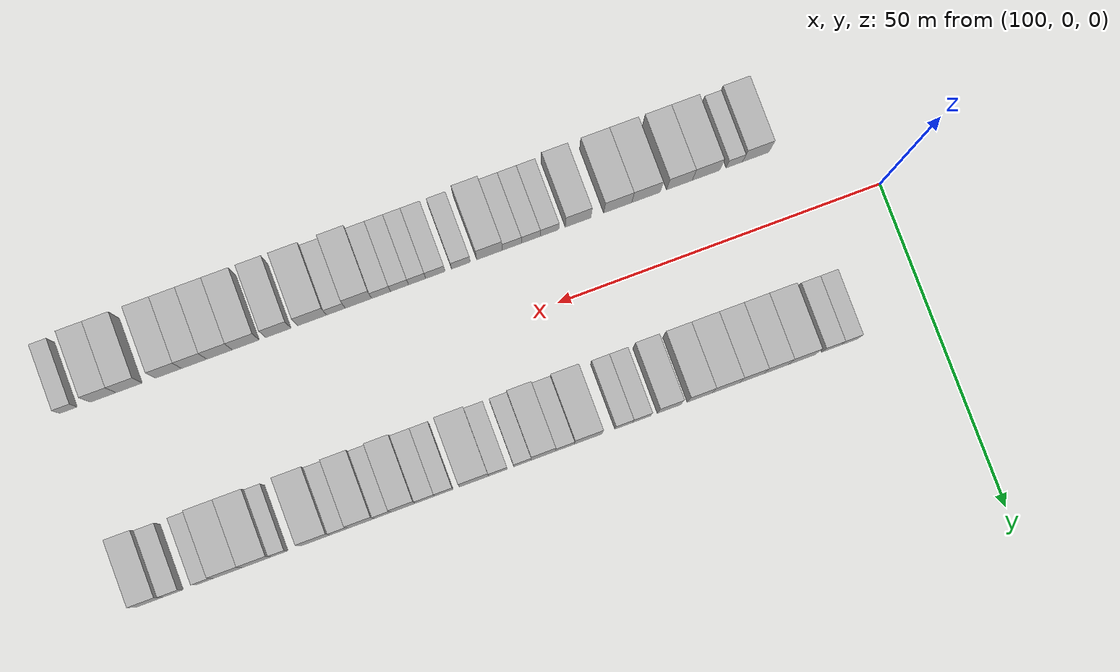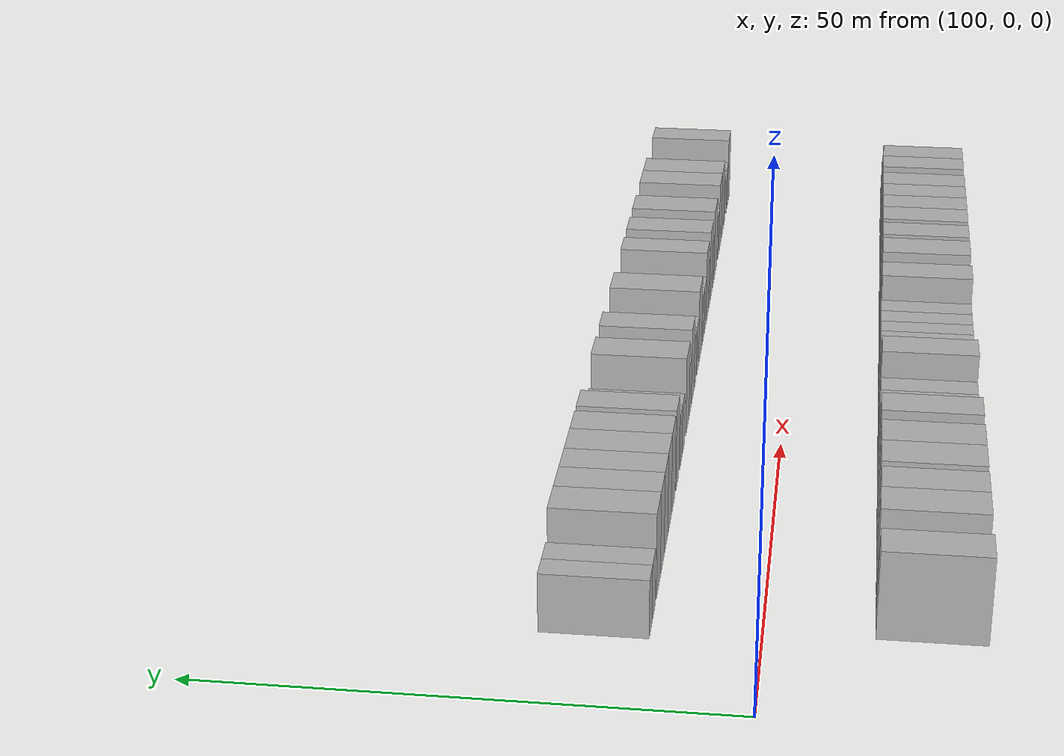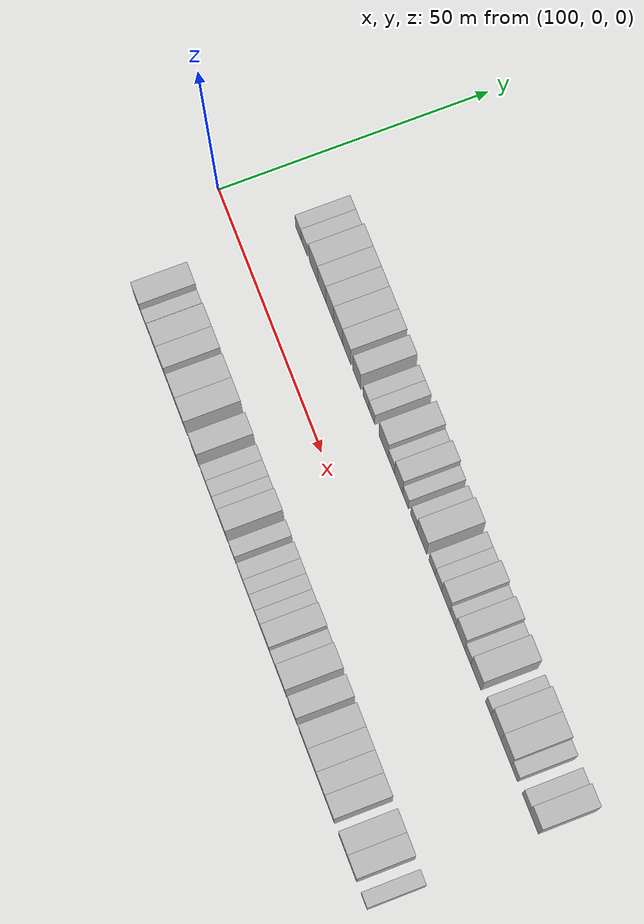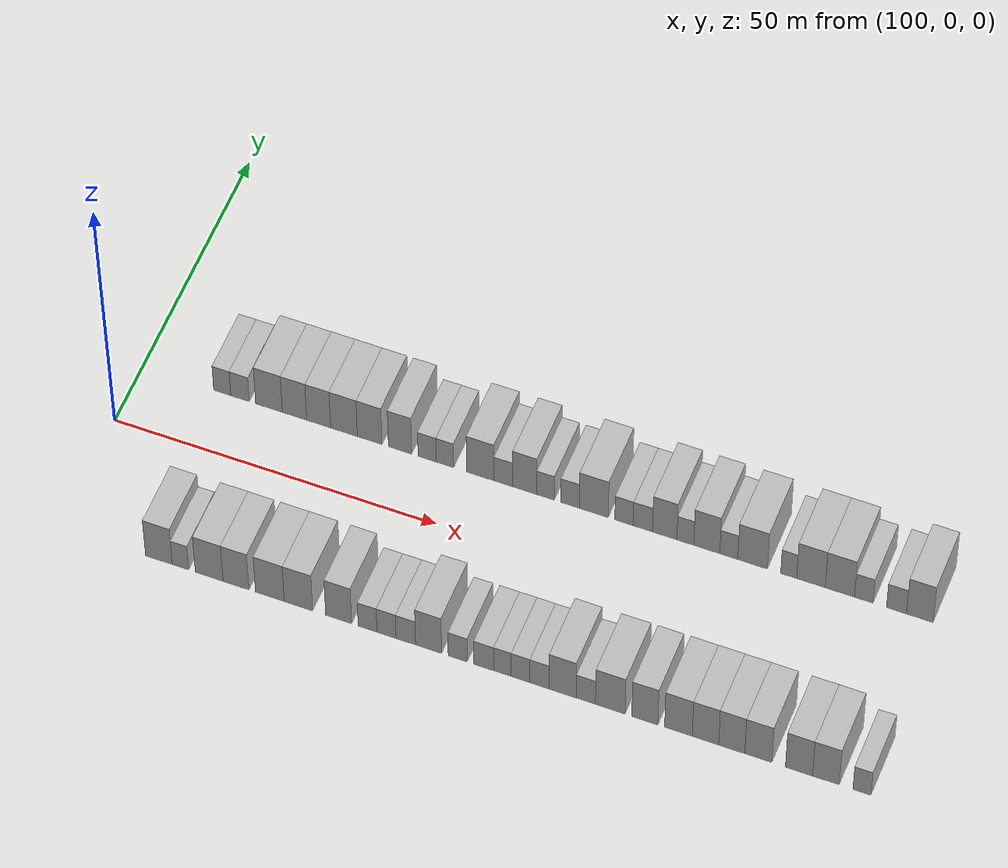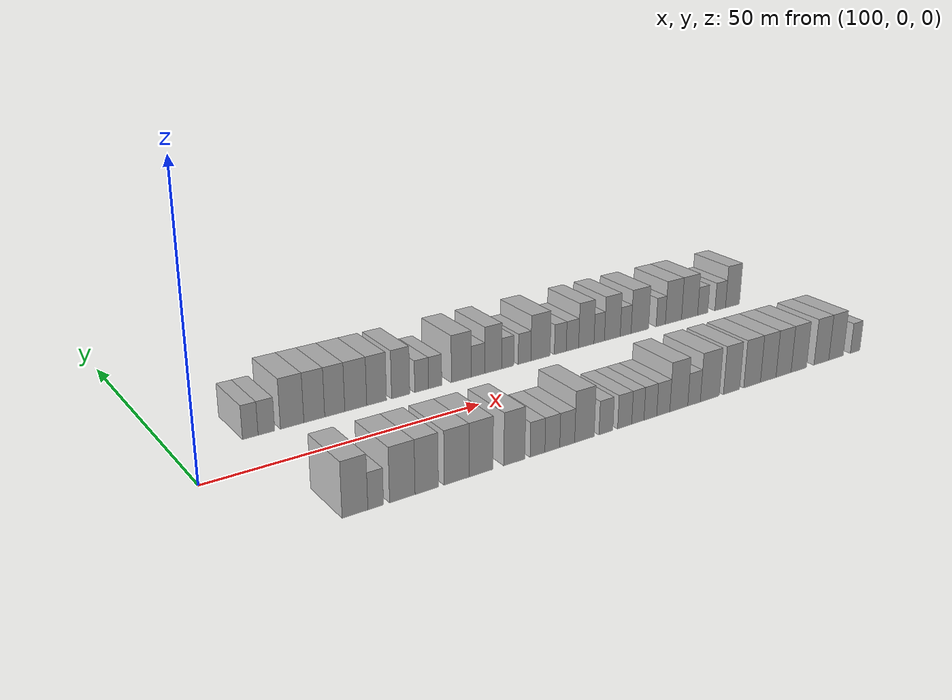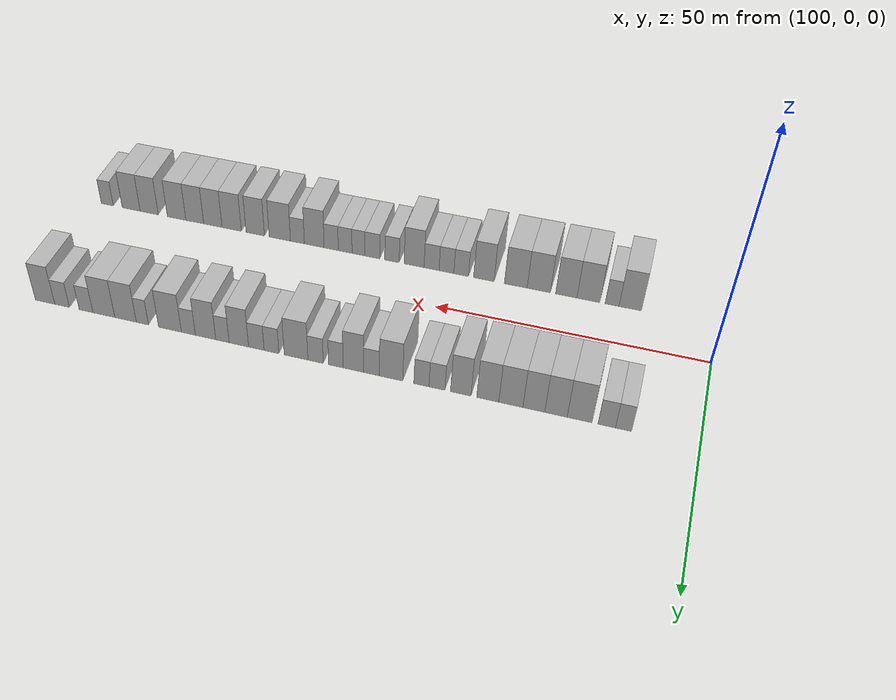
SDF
<sdf version="1.6">
 <world name="default">
  <model name="building_28">
   <static>1</static>
   <pose>112.5462 15.0000 0 0.000000 0.000000 1.570796</pose>
   <link name="link">
    <pose>0 0 3.00 0 0 0</pose>
    <collision name="collision"><geometry><box><size>10.0000 2.6904 6.0000</size></box></geometry></collision>
    <visual name="visual">
     <cast_shadows>0</cast_shadows>
     <geometry><box><size>10.0000 2.6904 6.0000</size></box></geometry>
     <material>
      <script>
       <uri>model://HANNAS_wall/materials/scripts</uri>
       <uri>model://HANNAS_wall/materials/textures</uri>
       <name>vrc/HANNAS_wall</name>
      </script>
     </material>
    </visual>
   </link>
  </model>
  <model name="building_29">
   <static>1</static>
   <pose>115.3470 15.0000 0 0.000000 0.000000 1.570796</pose>
   <link name="link">
    <pose>0 0 3.00 0 0 0</pose>
    <collision name="collision"><geometry><box><size>10.0000 2.9112 6.0000</size></box></geometry></collision>
    <visual name="visual">
     <cast_shadows>0</cast_shadows>
     <geometry><box><size>10.0000 2.9112 6.0000</size></box></geometry>
     <material>
      <script>
       <uri>model://HANNAS_wall/materials/scripts</uri>
       <uri>model://HANNAS_wall/materials/textures</uri>
       <name>vrc/HANNAS_wall</name>
      </script>
     </material>
    </visual>
   </link>
  </model>
  <model name="building_30">
   <static>1</static>
   <pose>119.9015 15.0000 0 0.000000 0.000000 1.570796</pose>
   <link name="link">
    <pose>0 0 4.50 0 0 0</pose>
    <collision name="collision"><geometry><box><size>10.0000 4.1978 9.0000</size></box></geometry></collision>
    <visual name="visual">
     <cast_shadows>0</cast_shadows>
     <geometry><box><size>10.0000 4.1978 9.0000</size></box></geometry>
     <material>
      <script>
       <uri>model://HANNAS_wall/materials/scripts</uri>
       <uri>model://HANNAS_wall/materials/textures</uri>
       <name>vrc/HANNAS_wall</name>
      </script>
     </material>
    </visual>
   </link>
  </model>
  <model name="building_31">
   <static>1</static>
   <pose>123.9093 15.0000 0 0.000000 0.000000 1.570796</pose>
   <link name="link">
    <pose>0 0 4.50 0 0 0</pose>
    <collision name="collision"><geometry><box><size>10.0000 3.8177 9.0000</size></box></geometry></collision>
    <visual name="visual">
     <cast_shadows>0</cast_shadows>
     <geometry><box><size>10.0000 3.8177 9.0000</size></box></geometry>
     <material>
      <script>
       <uri>model://HANNAS_wall/materials/scripts</uri>
       <uri>model://HANNAS_wall/materials/textures</uri>
       <name>vrc/HANNAS_wall</name>
      </script>
     </material>
    </visual>
   </link>
  </model>
  <model name="building_32">
   <static>1</static>
   <pose>127.6894 15.0000 0 0.000000 0.000000 1.570796</pose>
   <link name="link">
    <pose>0 0 4.50 0 0 0</pose>
    <collision name="collision"><geometry><box><size>10.0000 3.7425 9.0000</size></box></geometry></collision>
    <visual name="visual">
     <cast_shadows>0</cast_shadows>
     <geometry><box><size>10.0000 3.7425 9.0000</size></box></geometry>
     <material>
      <script>
       <uri>model://HANNAS_wall/materials/scripts</uri>
       <uri>model://HANNAS_wall/materials/textures</uri>
       <name>vrc/HANNAS_wall</name>
      </script>
     </material>
    </visual>
   </link>
  </model>
  <model name="building_33">
   <static>1</static>
   <pose>131.6490 15.0000 0 0.000000 0.000000 1.570796</pose>
   <link name="link">
    <pose>0 0 4.50 0 0 0</pose>
    <collision name="collision"><geometry><box><size>10.0000 4.1766 9.0000</size></box></geometry></collision>
    <visual name="visual">
     <cast_shadows>0</cast_shadows>
     <geometry><box><size>10.0000 4.1766 9.0000</size></box></geometry>
     <material>
      <script>
       <uri>model://HANNAS_wall/materials/scripts</uri>
       <uri>model://HANNAS_wall/materials/textures</uri>
       <name>vrc/HANNAS_wall</name>
      </script>
     </material>
    </visual>
   </link>
  </model>
  <model name="building_34">
   <static>1</static>
   <pose>135.6532 15.0000 0 0.000000 0.000000 1.570796</pose>
   <link name="link">
    <pose>0 0 4.50 0 0 0</pose>
    <collision name="collision"><geometry><box><size>10.0000 3.8319 9.0000</size></box></geometry></collision>
    <visual name="visual">
     <cast_shadows>0</cast_shadows>
     <geometry><box><size>10.0000 3.8319 9.0000</size></box></geometry>
     <material>
      <script>
       <uri>model://HANNAS_wall/materials/scripts</uri>
       <uri>model://HANNAS_wall/materials/textures</uri>
       <name>vrc/HANNAS_wall</name>
      </script>
     </material>
    </visual>
   </link>
  </model>
  <model name="building_35">
   <static>1</static>
   <pose>140.3760 15.0000 0 0.000000 0.000000 1.570796</pose>
   <link name="link">
    <pose>0 0 4.50 0 0 0</pose>
    <collision name="collision"><geometry><box><size>10.0000 3.6137 9.0000</size></box></geometry></collision>
    <visual name="visual">
     <cast_shadows>0</cast_shadows>
     <geometry><box><size>10.0000 3.6137 9.0000</size></box></geometry>
     <material>
      <script>
       <uri>model://HANNAS_wall/materials/scripts</uri>
       <uri>model://HANNAS_wall/materials/textures</uri>
       <name>vrc/HANNAS_wall</name>
      </script>
     </material>
    </visual>
   </link>
  </model>
  <model name="building_36">
   <static>1</static>
   <pose>144.5920 15.0000 0 0.000000 0.000000 1.570796</pose>
   <link name="link">
    <pose>0 0 3.00 0 0 0</pose>
    <collision name="collision"><geometry><box><size>10.0000 2.8183 6.0000</size></box></geometry></collision>
    <visual name="visual">
     <cast_shadows>0</cast_shadows>
     <geometry><box><size>10.0000 2.8183 6.0000</size></box></geometry>
     <material>
      <script>
       <uri>model://HANNAS_wall/materials/scripts</uri>
       <uri>model://HANNAS_wall/materials/textures</uri>
       <name>vrc/HANNAS_wall</name>
      </script>
     </material>
    </visual>
   </link>
  </model>
  <model name="building_37">
   <static>1</static>
   <pose>147.3561 15.0000 0 0.000000 0.000000 1.570796</pose>
   <link name="link">
    <pose>0 0 3.00 0 0 0</pose>
    <collision name="collision"><geometry><box><size>10.0000 2.7098 6.0000</size></box></geometry></collision>
    <visual name="visual">
     <cast_shadows>0</cast_shadows>
     <geometry><box><size>10.0000 2.7098 6.0000</size></box></geometry>
     <material>
      <script>
       <uri>model://HANNAS_wall/materials/scripts</uri>
       <uri>model://HANNAS_wall/materials/textures</uri>
       <name>vrc/HANNAS_wall</name>
      </script>
     </material>
    </visual>
   </link>
  </model>
  <model name="building_38">
   <static>1</static>
   <pose>152.8337 15.0000 0 0.000000 0.000000 1.570796</pose>
   <link name="link">
    <pose>0 0 4.50 0 0 0</pose>
    <collision name="collision"><geometry><box><size>10.0000 4.2455 9.0000</size></box></geometry></collision>
    <visual name="visual">
     <cast_shadows>0</cast_shadows>
     <geometry><box><size>10.0000 4.2455 9.0000</size></box></geometry>
     <material>
      <script>
       <uri>model://HANNAS_wall/materials/scripts</uri>
       <uri>model://HANNAS_wall/materials/textures</uri>
       <name>vrc/HANNAS_wall</name>
      </script>
     </material>
    </visual>
   </link>
  </model>
  <model name="building_39">
   <static>1</static>
   <pose>156.4042 15.0000 0 0.000000 0.000000 1.570796</pose>
   <link name="link">
    <pose>0 0 3.00 0 0 0</pose>
    <collision name="collision"><geometry><box><size>10.0000 2.8953 6.0000</size></box></geometry></collision>
    <visual name="visual">
     <cast_shadows>0</cast_shadows>
     <geometry><box><size>10.0000 2.8953 6.0000</size></box></geometry>
     <material>
      <script>
       <uri>model://HANNAS_wall/materials/scripts</uri>
       <uri>model://HANNAS_wall/materials/textures</uri>
       <name>vrc/HANNAS_wall</name>
      </script>
     </material>
    </visual>
   </link>
  </model>
  <model name="building_40">
   <static>1</static>
   <pose>159.7042 15.0000 0 0.000000 0.000000 1.570796</pose>
   <link name="link">
    <pose>0 0 4.50 0 0 0</pose>
    <collision name="collision"><geometry><box><size>10.0000 3.7048 9.0000</size></box></geometry></collision>
    <visual name="visual">
     <cast_shadows>0</cast_shadows>
     <geometry><box><size>10.0000 3.7048 9.0000</size></box></geometry>
     <material>
      <script>
       <uri>model://HANNAS_wall/materials/scripts</uri>
       <uri>model://HANNAS_wall/materials/textures</uri>
       <name>vrc/HANNAS_wall</name>
      </script>
     </material>
    </visual>
   </link>
  </model>
  <model name="building_41">
   <static>1</static>
   <pose>162.8913 15.0000 0 0.000000 0.000000 1.570796</pose>
   <link name="link">
    <pose>0 0 3.00 0 0 0</pose>
    <collision name="collision"><geometry><box><size>10.0000 2.6694 6.0000</size></box></geometry></collision>
    <visual name="visual">
     <cast_shadows>0</cast_shadows>
     <geometry><box><size>10.0000 2.6694 6.0000</size></box></geometry>
     <material>
      <script>
       <uri>model://HANNAS_wall/materials/scripts</uri>
       <uri>model://HANNAS_wall/materials/textures</uri>
       <name>vrc/HANNAS_wall</name>
      </script>
     </material>
    </visual>
   </link>
  </model>
  <model name="building_42">
   <static>1</static>
   <pose>166.6520 15.0000 0 0.000000 0.000000 1.570796</pose>
   <link name="link">
    <pose>0 0 3.00 0 0 0</pose>
    <collision name="collision"><geometry><box><size>10.0000 2.8520 6.0000</size></box></geometry></collision>
    <visual name="visual">
     <cast_shadows>0</cast_shadows>
     <geometry><box><size>10.0000 2.8520 6.0000</size></box></geometry>
     <material>
      <script>
       <uri>model://HANNAS_wall/materials/scripts</uri>
       <uri>model://HANNAS_wall/materials/textures</uri>
       <name>vrc/HANNAS_wall</name>
      </script>
     </material>
    </visual>
   </link>
  </model>
  <model name="building_43">
   <static>1</static>
   <pose>170.2901 15.0000 0 0.000000 0.000000 1.570796</pose>
   <link name="link">
    <pose>0 0 4.50 0 0 0</pose>
    <collision name="collision"><geometry><box><size>10.0000 4.4242 9.0000</size></box></geometry></collision>
    <visual name="visual">
     <cast_shadows>0</cast_shadows>
     <geometry><box><size>10.0000 4.4242 9.0000</size></box></geometry>
     <material>
      <script>
       <uri>model://HANNAS_wall/materials/scripts</uri>
       <uri>model://HANNAS_wall/materials/textures</uri>
       <name>vrc/HANNAS_wall</name>
      </script>
     </material>
    </visual>
   </link>
  </model>
  <model name="building_44">
   <static>1</static>
   <pose>174.8964 15.0000 0 0.000000 0.000000 1.570796</pose>
   <link name="link">
    <pose>0 0 3.00 0 0 0</pose>
    <collision name="collision"><geometry><box><size>10.0000 2.7885 6.0000</size></box></geometry></collision>
    <visual name="visual">
     <cast_shadows>0</cast_shadows>
     <geometry><box><size>10.0000 2.7885 6.0000</size></box></geometry>
     <material>
      <script>
       <uri>model://HANNAS_wall/materials/scripts</uri>
       <uri>model://HANNAS_wall/materials/textures</uri>
       <name>vrc/HANNAS_wall</name>
      </script>
     </material>
    </visual>
   </link>
  </model>
  <model name="building_45">
   <static>1</static>
   <pose>177.7703 15.0000 0 0.000000 0.000000 1.570796</pose>
   <link name="link">
    <pose>0 0 3.00 0 0 0</pose>
    <collision name="collision"><geometry><box><size>10.0000 2.9592 6.0000</size></box></geometry></collision>
    <visual name="visual">
     <cast_shadows>0</cast_shadows>
     <geometry><box><size>10.0000 2.9592 6.0000</size></box></geometry>
     <material>
      <script>
       <uri>model://HANNAS_wall/materials/scripts</uri>
       <uri>model://HANNAS_wall/materials/textures</uri>
       <name>vrc/HANNAS_wall</name>
      </script>
     </material>
    </visual>
   </link>
  </model>
  <model name="building_46">
   <static>1</static>
   <pose>181.1116 15.0000 0 0.000000 0.000000 1.570796</pose>
   <link name="link">
    <pose>0 0 4.50 0 0 0</pose>
    <collision name="collision"><geometry><box><size>10.0000 3.7234 9.0000</size></box></geometry></collision>
    <visual name="visual">
     <cast_shadows>0</cast_shadows>
     <geometry><box><size>10.0000 3.7234 9.0000</size></box></geometry>
     <material>
      <script>
       <uri>model://HANNAS_wall/materials/scripts</uri>
       <uri>model://HANNAS_wall/materials/textures</uri>
       <name>vrc/HANNAS_wall</name>
      </script>
     </material>
    </visual>
   </link>
  </model>
  <model name="building_47">
   <static>1</static>
   <pose>184.2537 15.0000 0 0.000000 0.000000 1.570796</pose>
   <link name="link">
    <pose>0 0 3.00 0 0 0</pose>
    <collision name="collision"><geometry><box><size>10.0000 2.5609 6.0000</size></box></geometry></collision>
    <visual name="visual">
     <cast_shadows>0</cast_shadows>
     <geometry><box><size>10.0000 2.5609 6.0000</size></box></geometry>
     <material>
      <script>
       <uri>model://HANNAS_wall/materials/scripts</uri>
       <uri>model://HANNAS_wall/materials/textures</uri>
       <name>vrc/HANNAS_wall</name>
      </script>
     </material>
    </visual>
   </link>
  </model>
  <model name="building_48">
   <static>1</static>
   <pose>187.5087 15.0000 0 0.000000 0.000000 1.570796</pose>
   <link name="link">
    <pose>0 0 4.50 0 0 0</pose>
    <collision name="collision"><geometry><box><size>10.0000 3.9491 9.0000</size></box></geometry></collision>
    <visual name="visual">
     <cast_shadows>0</cast_shadows>
     <geometry><box><size>10.0000 3.9491 9.0000</size></box></geometry>
     <material>
      <script>
       <uri>model://HANNAS_wall/materials/scripts</uri>
       <uri>model://HANNAS_wall/materials/textures</uri>
       <name>vrc/HANNAS_wall</name>
      </script>
     </material>
    </visual>
   </link>
  </model>
  <model name="building_49">
   <static>1</static>
   <pose>190.8543 15.0000 0 0.000000 0.000000 1.570796</pose>
   <link name="link">
    <pose>0 0 3.00 0 0 0</pose>
    <collision name="collision"><geometry><box><size>10.0000 2.7420 6.0000</size></box></geometry></collision>
    <visual name="visual">
     <cast_shadows>0</cast_shadows>
     <geometry><box><size>10.0000 2.7420 6.0000</size></box></geometry>
     <material>
      <script>
       <uri>model://HANNAS_wall/materials/scripts</uri>
       <uri>model://HANNAS_wall/materials/textures</uri>
       <name>vrc/HANNAS_wall</name>
      </script>
     </material>
    </visual>
   </link>
  </model>
  <model name="building_50">
   <static>1</static>
   <pose>194.4691 15.0000 0 0.000000 0.000000 1.570796</pose>
   <link name="link">
    <pose>0 0 4.50 0 0 0</pose>
    <collision name="collision"><geometry><box><size>10.0000 4.4876 9.0000</size></box></geometry></collision>
    <visual name="visual">
     <cast_shadows>0</cast_shadows>
     <geometry><box><size>10.0000 4.4876 9.0000</size></box></geometry>
     <material>
      <script>
       <uri>model://HANNAS_wall/materials/scripts</uri>
       <uri>model://HANNAS_wall/materials/textures</uri>
       <name>vrc/HANNAS_wall</name>
      </script>
     </material>
    </visual>
   </link>
  </model>
  <model name="building_51">
   <static>1</static>
   <pose>199.9189 15.0000 0 0.000000 0.000000 1.570796</pose>
   <link name="link">
    <pose>0 0 3.00 0 0 0</pose>
    <collision name="collision"><geometry><box><size>10.0000 2.4120 6.0000</size></box></geometry></collision>
    <visual name="visual">
     <cast_shadows>0</cast_shadows>
     <geometry><box><size>10.0000 2.4120 6.0000</size></box></geometry>
     <material>
      <script>
       <uri>model://HANNAS_wall/materials/scripts</uri>
       <uri>model://HANNAS_wall/materials/textures</uri>
       <name>vrc/HANNAS_wall</name>
      </script>
     </material>
    </visual>
   </link>
  </model>
  <model name="building_52">
   <static>1</static>
   <pose>203.2819 15.0000 0 0.000000 0.000000 1.570796</pose>
   <link name="link">
    <pose>0 0 4.50 0 0 0</pose>
    <collision name="collision"><geometry><box><size>10.0000 4.3141 9.0000</size></box></geometry></collision>
    <visual name="visual">
     <cast_shadows>0</cast_shadows>
     <geometry><box><size>10.0000 4.3141 9.0000</size></box></geometry>
     <material>
      <script>
       <uri>model://HANNAS_wall/materials/scripts</uri>
       <uri>model://HANNAS_wall/materials/textures</uri>
       <name>vrc/HANNAS_wall</name>
      </script>
     </material>
    </visual>
   </link>
  </model>
  <model name="building_53">
   <static>1</static>
   <pose>207.6376 15.0000 0 0.000000 0.000000 1.570796</pose>
   <link name="link">
    <pose>0 0 4.50 0 0 0</pose>
    <collision name="collision"><geometry><box><size>10.0000 4.3973 9.0000</size></box></geometry></collision>
    <visual name="visual">
     <cast_shadows>0</cast_shadows>
     <geometry><box><size>10.0000 4.3973 9.0000</size></box></geometry>
     <material>
      <script>
       <uri>model://HANNAS_wall/materials/scripts</uri>
       <uri>model://HANNAS_wall/materials/textures</uri>
       <name>vrc/HANNAS_wall</name>
      </script>
     </material>
    </visual>
   </link>
  </model>
  <model name="building_54">
   <static>1</static>
   <pose>211.2331 15.0000 0 0.000000 0.000000 1.570796</pose>
   <link name="link">
    <pose>0 0 3.00 0 0 0</pose>
    <collision name="collision"><geometry><box><size>10.0000 2.7936 6.0000</size></box></geometry></collision>
    <visual name="visual">
     <cast_shadows>0</cast_shadows>
     <geometry><box><size>10.0000 2.7936 6.0000</size></box></geometry>
     <material>
      <script>
       <uri>model://HANNAS_wall/materials/scripts</uri>
       <uri>model://HANNAS_wall/materials/textures</uri>
       <name>vrc/HANNAS_wall</name>
      </script>
     </material>
    </visual>
   </link>
  </model>
  <model name="building_55">
   <static>1</static>
   <pose>216.1294 15.0000 0 0.000000 0.000000 1.570796</pose>
   <link name="link">
    <pose>0 0 3.00 0 0 0</pose>
    <collision name="collision"><geometry><box><size>10.0000 2.9991 6.0000</size></box></geometry></collision>
    <visual name="visual">
     <cast_shadows>0</cast_shadows>
     <geometry><box><size>10.0000 2.9991 6.0000</size></box></geometry>
     <material>
      <script>
       <uri>model://HANNAS_wall/materials/scripts</uri>
       <uri>model://HANNAS_wall/materials/textures</uri>
       <name>vrc/HANNAS_wall</name>
      </script>
     </material>
    </visual>
   </link>
  </model>
  <model name="building_56">
   <static>1</static>
   <pose>219.6202 15.0000 0 0.000000 0.000000 1.570796</pose>
   <link name="link">
    <pose>0 0 4.50 0 0 0</pose>
    <collision name="collision"><geometry><box><size>10.0000 3.9824 9.0000</size></box></geometry></collision>
    <visual name="visual">
     <cast_shadows>0</cast_shadows>
     <geometry><box><size>10.0000 3.9824 9.0000</size></box></geometry>
     <material>
      <script>
       <uri>model://HANNAS_wall/materials/scripts</uri>
       <uri>model://HANNAS_wall/materials/textures</uri>
       <name>vrc/HANNAS_wall</name>
      </script>
     </material>
    </visual>
   </link>
  </model>
  <model name="building_85">
   <static>1</static>
   <pose>115.5190 -15.0000 0 0.000000 0.000000 1.570796</pose>
   <link name="link">
    <pose>0 0 4.50 0 0 0</pose>
    <collision name="collision"><geometry><box><size>10.0000 4.1252 9.0000</size></box></geometry></collision>
    <visual name="visual">
     <cast_shadows>0</cast_shadows>
     <geometry><box><size>10.0000 4.1252 9.0000</size></box></geometry>
     <material>
      <script>
       <uri>model://HANNAS_wall/materials/scripts</uri>
       <uri>model://HANNAS_wall/materials/textures</uri>
       <name>vrc/HANNAS_wall</name>
      </script>
     </material>
    </visual>
   </link>
  </model>
  <model name="building_86">
   <static>1</static>
   <pose>118.8587 -15.0000 0 0.000000 0.000000 1.570796</pose>
   <link name="link">
    <pose>0 0 3.00 0 0 0</pose>
    <collision name="collision"><geometry><box><size>10.0000 2.5542 6.0000</size></box></geometry></collision>
    <visual name="visual">
     <cast_shadows>0</cast_shadows>
     <geometry><box><size>10.0000 2.5542 6.0000</size></box></geometry>
     <material>
      <script>
       <uri>model://HANNAS_wall/materials/scripts</uri>
       <uri>model://HANNAS_wall/materials/textures</uri>
       <name>vrc/HANNAS_wall</name>
      </script>
     </material>
    </visual>
   </link>
  </model>
  <model name="building_87">
   <static>1</static>
   <pose>123.2731 -15.0000 0 0.000000 0.000000 1.570796</pose>
   <link name="link">
    <pose>0 0 4.50 0 0 0</pose>
    <collision name="collision"><geometry><box><size>10.0000 4.2746 9.0000</size></box></geometry></collision>
    <visual name="visual">
     <cast_shadows>0</cast_shadows>
     <geometry><box><size>10.0000 4.2746 9.0000</size></box></geometry>
     <material>
      <script>
       <uri>model://HANNAS_wall/materials/scripts</uri>
       <uri>model://HANNAS_wall/materials/textures</uri>
       <name>vrc/HANNAS_wall</name>
      </script>
     </material>
    </visual>
   </link>
  </model>
  <model name="building_88">
   <static>1</static>
   <pose>127.4114 -15.0000 0 0.000000 0.000000 1.570796</pose>
   <link name="link">
    <pose>0 0 4.50 0 0 0</pose>
    <collision name="collision"><geometry><box><size>10.0000 4.0021 9.0000</size></box></geometry></collision>
    <visual name="visual">
     <cast_shadows>0</cast_shadows>
     <geometry><box><size>10.0000 4.0021 9.0000</size></box></geometry>
     <material>
      <script>
       <uri>model://HANNAS_wall/materials/scripts</uri>
       <uri>model://HANNAS_wall/materials/textures</uri>
       <name>vrc/HANNAS_wall</name>
      </script>
     </material>
    </visual>
   </link>
  </model>
  <model name="building_89">
   <static>1</static>
   <pose>132.6167 -15.0000 0 0.000000 0.000000 1.570796</pose>
   <link name="link">
    <pose>0 0 4.50 0 0 0</pose>
    <collision name="collision"><geometry><box><size>10.0000 4.4085 9.0000</size></box></geometry></collision>
    <visual name="visual">
     <cast_shadows>0</cast_shadows>
     <geometry><box><size>10.0000 4.4085 9.0000</size></box></geometry>
     <material>
      <script>
       <uri>model://HANNAS_wall/materials/scripts</uri>
       <uri>model://HANNAS_wall/materials/textures</uri>
       <name>vrc/HANNAS_wall</name>
      </script>
     </material>
    </visual>
   </link>
  </model>
  <model name="building_90">
   <static>1</static>
   <pose>137.0010 -15.0000 0 0.000000 0.000000 1.570796</pose>
   <link name="link">
    <pose>0 0 4.50 0 0 0</pose>
    <collision name="collision"><geometry><box><size>10.0000 4.3602 9.0000</size></box></geometry></collision>
    <visual name="visual">
     <cast_shadows>0</cast_shadows>
     <geometry><box><size>10.0000 4.3602 9.0000</size></box></geometry>
     <material>
      <script>
       <uri>model://HANNAS_wall/materials/scripts</uri>
       <uri>model://HANNAS_wall/materials/textures</uri>
       <name>vrc/HANNAS_wall</name>
      </script>
     </material>
    </visual>
   </link>
  </model>
  <model name="building_91">
   <static>1</static>
   <pose>143.1585 -15.0000 0 0.000000 0.000000 1.570796</pose>
   <link name="link">
    <pose>0 0 4.50 0 0 0</pose>
    <collision name="collision"><geometry><box><size>10.0000 3.9548 9.0000</size></box></geometry></collision>
    <visual name="visual">
     <cast_shadows>0</cast_shadows>
     <geometry><box><size>10.0000 3.9548 9.0000</size></box></geometry>
     <material>
      <script>
       <uri>model://HANNAS_wall/materials/scripts</uri>
       <uri>model://HANNAS_wall/materials/textures</uri>
       <name>vrc/HANNAS_wall</name>
      </script>
     </material>
    </visual>
   </link>
  </model>
  <model name="building_92">
   <static>1</static>
   <pose>147.5650 -15.0000 0 0.000000 0.000000 1.570796</pose>
   <link name="link">
    <pose>0 0 3.00 0 0 0</pose>
    <collision name="collision"><geometry><box><size>10.0000 2.8580 6.0000</size></box></geometry></collision>
    <visual name="visual">
     <cast_shadows>0</cast_shadows>
     <geometry><box><size>10.0000 2.8580 6.0000</size></box></geometry>
     <material>
      <script>
       <uri>model://HANNAS_wall/materials/scripts</uri>
       <uri>model://HANNAS_wall/materials/textures</uri>
       <name>vrc/HANNAS_wall</name>
      </script>
     </material>
    </visual>
   </link>
  </model>
  <model name="building_93">
   <static>1</static>
   <pose>150.4508 -15.0000 0 0.000000 0.000000 1.570796</pose>
   <link name="link">
    <pose>0 0 3.00 0 0 0</pose>
    <collision name="collision"><geometry><box><size>10.0000 2.9137 6.0000</size></box></geometry></collision>
    <visual name="visual">
     <cast_shadows>0</cast_shadows>
     <geometry><box><size>10.0000 2.9137 6.0000</size></box></geometry>
     <material>
      <script>
       <uri>model://HANNAS_wall/materials/scripts</uri>
       <uri>model://HANNAS_wall/materials/textures</uri>
       <name>vrc/HANNAS_wall</name>
      </script>
     </material>
    </visual>
   </link>
  </model>
  <model name="building_94">
   <static>1</static>
   <pose>153.3909 -15.0000 0 0.000000 0.000000 1.570796</pose>
   <link name="link">
    <pose>0 0 3.00 0 0 0</pose>
    <collision name="collision"><geometry><box><size>10.0000 2.9666 6.0000</size></box></geometry></collision>
    <visual name="visual">
     <cast_shadows>0</cast_shadows>
     <geometry><box><size>10.0000 2.9666 6.0000</size></box></geometry>
     <material>
      <script>
       <uri>model://HANNAS_wall/materials/scripts</uri>
       <uri>model://HANNAS_wall/materials/textures</uri>
       <name>vrc/HANNAS_wall</name>
      </script>
     </material>
    </visual>
   </link>
  </model>
  <model name="building_95">
   <static>1</static>
   <pose>156.8513 -15.0000 0 0.000000 0.000000 1.570796</pose>
   <link name="link">
    <pose>0 0 4.50 0 0 0</pose>
    <collision name="collision"><geometry><box><size>10.0000 3.9540 9.0000</size></box></geometry></collision>
    <visual name="visual">
     <cast_shadows>0</cast_shadows>
     <geometry><box><size>10.0000 3.9540 9.0000</size></box></geometry>
     <material>
      <script>
       <uri>model://HANNAS_wall/materials/scripts</uri>
       <uri>model://HANNAS_wall/materials/textures</uri>
       <name>vrc/HANNAS_wall</name>
      </script>
     </material>
    </visual>
   </link>
  </model>
  <model name="building_96">
   <static>1</static>
   <pose>161.2721 -15.0000 0 0.000000 0.000000 1.570796</pose>
   <link name="link">
    <pose>0 0 3.00 0 0 0</pose>
    <collision name="collision"><geometry><box><size>10.0000 2.8877 6.0000</size></box></geometry></collision>
    <visual name="visual">
     <cast_shadows>0</cast_shadows>
     <geometry><box><size>10.0000 2.8877 6.0000</size></box></geometry>
     <material>
      <script>
       <uri>model://HANNAS_wall/materials/scripts</uri>
       <uri>model://HANNAS_wall/materials/textures</uri>
       <name>vrc/HANNAS_wall</name>
      </script>
     </material>
    </visual>
   </link>
  </model>
  <model name="building_97">
   <static>1</static>
   <pose>165.2113 -15.0000 0 0.000000 0.000000 1.570796</pose>
   <link name="link">
    <pose>0 0 3.00 0 0 0</pose>
    <collision name="collision"><geometry><box><size>10.0000 2.9906 6.0000</size></box></geometry></collision>
    <visual name="visual">
     <cast_shadows>0</cast_shadows>
     <geometry><box><size>10.0000 2.9906 6.0000</size></box></geometry>
     <material>
      <script>
       <uri>model://HANNAS_wall/materials/scripts</uri>
       <uri>model://HANNAS_wall/materials/textures</uri>
       <name>vrc/HANNAS_wall</name>
      </script>
     </material>
    </visual>
   </link>
  </model>
  <model name="building_98">
   <static>1</static>
   <pose>168.0262 -15.0000 0 0.000000 0.000000 1.570796</pose>
   <link name="link">
    <pose>0 0 3.00 0 0 0</pose>
    <collision name="collision"><geometry><box><size>10.0000 2.6390 6.0000</size></box></geometry></collision>
    <visual name="visual">
     <cast_shadows>0</cast_shadows>
     <geometry><box><size>10.0000 2.6390 6.0000</size></box></geometry>
     <material>
      <script>
       <uri>model://HANNAS_wall/materials/scripts</uri>
       <uri>model://HANNAS_wall/materials/textures</uri>
       <name>vrc/HANNAS_wall</name>
      </script>
     </material>
    </visual>
   </link>
  </model>
  <model name="building_99">
   <static>1</static>
   <pose>170.7439 -15.0000 0 0.000000 0.000000 1.570796</pose>
   <link name="link">
    <pose>0 0 3.00 0 0 0</pose>
    <collision name="collision"><geometry><box><size>10.0000 2.7965 6.0000</size></box></geometry></collision>
    <visual name="visual">
     <cast_shadows>0</cast_shadows>
     <geometry><box><size>10.0000 2.7965 6.0000</size></box></geometry>
     <material>
      <script>
       <uri>model://HANNAS_wall/materials/scripts</uri>
       <uri>model://HANNAS_wall/materials/textures</uri>
       <name>vrc/HANNAS_wall</name>
      </script>
     </material>
    </visual>
   </link>
  </model>
  <model name="building_100">
   <static>1</static>
   <pose>173.5948 -15.0000 0 0.000000 0.000000 1.570796</pose>
   <link name="link">
    <pose>0 0 3.00 0 0 0</pose>
    <collision name="collision"><geometry><box><size>10.0000 2.9055 6.0000</size></box></geometry></collision>
    <visual name="visual">
     <cast_shadows>0</cast_shadows>
     <geometry><box><size>10.0000 2.9055 6.0000</size></box></geometry>
     <material>
      <script>
       <uri>model://HANNAS_wall/materials/scripts</uri>
       <uri>model://HANNAS_wall/materials/textures</uri>
       <name>vrc/HANNAS_wall</name>
      </script>
     </material>
    </visual>
   </link>
  </model>
  <model name="building_101">
   <static>1</static>
   <pose>177.0798 -15.0000 0 0.000000 0.000000 1.570796</pose>
   <link name="link">
    <pose>0 0 4.50 0 0 0</pose>
    <collision name="collision"><geometry><box><size>10.0000 4.0644 9.0000</size></box></geometry></collision>
    <visual name="visual">
     <cast_shadows>0</cast_shadows>
     <geometry><box><size>10.0000 4.0644 9.0000</size></box></geometry>
     <material>
      <script>
       <uri>model://HANNAS_wall/materials/scripts</uri>
       <uri>model://HANNAS_wall/materials/textures</uri>
       <name>vrc/HANNAS_wall</name>
      </script>
     </material>
    </visual>
   </link>
  </model>
  <model name="building_102">
   <static>1</static>
   <pose>180.5583 -15.0000 0 0.000000 0.000000 1.570796</pose>
   <link name="link">
    <pose>0 0 3.00 0 0 0</pose>
    <collision name="collision"><geometry><box><size>10.0000 2.8926 6.0000</size></box></geometry></collision>
    <visual name="visual">
     <cast_shadows>0</cast_shadows>
     <geometry><box><size>10.0000 2.8926 6.0000</size></box></geometry>
     <material>
      <script>
       <uri>model://HANNAS_wall/materials/scripts</uri>
       <uri>model://HANNAS_wall/materials/textures</uri>
       <name>vrc/HANNAS_wall</name>
      </script>
     </material>
    </visual>
   </link>
  </model>
  <model name="building_103">
   <static>1</static>
   <pose>184.2236 -15.0000 0 0.000000 0.000000 1.570796</pose>
   <link name="link">
    <pose>0 0 4.50 0 0 0</pose>
    <collision name="collision"><geometry><box><size>10.0000 4.4381 9.0000</size></box></geometry></collision>
    <visual name="visual">
     <cast_shadows>0</cast_shadows>
     <geometry><box><size>10.0000 4.4381 9.0000</size></box></geometry>
     <material>
      <script>
       <uri>model://HANNAS_wall/materials/scripts</uri>
       <uri>model://HANNAS_wall/materials/textures</uri>
       <name>vrc/HANNAS_wall</name>
      </script>
     </material>
    </visual>
   </link>
  </model>
  <model name="building_104">
   <static>1</static>
   <pose>189.3890 -15.0000 0 0.000000 0.000000 1.570796</pose>
   <link name="link">
    <pose>0 0 4.50 0 0 0</pose>
    <collision name="collision"><geometry><box><size>10.0000 3.8927 9.0000</size></box></geometry></collision>
    <visual name="visual">
     <cast_shadows>0</cast_shadows>
     <geometry><box><size>10.0000 3.8927 9.0000</size></box></geometry>
     <material>
      <script>
       <uri>model://HANNAS_wall/materials/scripts</uri>
       <uri>model://HANNAS_wall/materials/textures</uri>
       <name>vrc/HANNAS_wall</name>
      </script>
     </material>
    </visual>
   </link>
  </model>
  <model name="building_105">
   <static>1</static>
   <pose>194.3934 -15.0000 0 0.000000 0.000000 1.570796</pose>
   <link name="link">
    <pose>0 0 4.50 0 0 0</pose>
    <collision name="collision"><geometry><box><size>10.0000 4.1160 9.0000</size></box></geometry></collision>
    <visual name="visual">
     <cast_shadows>0</cast_shadows>
     <geometry><box><size>10.0000 4.1160 9.0000</size></box></geometry>
     <material>
      <script>
       <uri>model://HANNAS_wall/materials/scripts</uri>
       <uri>model://HANNAS_wall/materials/textures</uri>
       <name>vrc/HANNAS_wall</name>
      </script>
     </material>
    </visual>
   </link>
  </model>
  <model name="building_106">
   <static>1</static>
   <pose>198.4115 -15.0000 0 0.000000 0.000000 1.570796</pose>
   <link name="link">
    <pose>0 0 4.50 0 0 0</pose>
    <collision name="collision"><geometry><box><size>10.0000 3.9203 9.0000</size></box></geometry></collision>
    <visual name="visual">
     <cast_shadows>0</cast_shadows>
     <geometry><box><size>10.0000 3.9203 9.0000</size></box></geometry>
     <material>
      <script>
       <uri>model://HANNAS_wall/materials/scripts</uri>
       <uri>model://HANNAS_wall/materials/textures</uri>
       <name>vrc/HANNAS_wall</name>
      </script>
     </material>
    </visual>
   </link>
  </model>
  <model name="building_107">
   <static>1</static>
   <pose>202.3070 -15.0000 0 0.000000 0.000000 1.570796</pose>
   <link name="link">
    <pose>0 0 4.50 0 0 0</pose>
    <collision name="collision"><geometry><box><size>10.0000 3.8707 9.0000</size></box></geometry></collision>
    <visual name="visual">
     <cast_shadows>0</cast_shadows>
     <geometry><box><size>10.0000 3.8707 9.0000</size></box></geometry>
     <material>
      <script>
       <uri>model://HANNAS_wall/materials/scripts</uri>
       <uri>model://HANNAS_wall/materials/textures</uri>
       <name>vrc/HANNAS_wall</name>
      </script>
     </material>
    </visual>
   </link>
  </model>
  <model name="building_108">
   <static>1</static>
   <pose>206.2530 -15.0000 0 0.000000 0.000000 1.570796</pose>
   <link name="link">
    <pose>0 0 4.50 0 0 0</pose>
    <collision name="collision"><geometry><box><size>10.0000 4.0214 9.0000</size></box></geometry></collision>
    <visual name="visual">
     <cast_shadows>0</cast_shadows>
     <geometry><box><size>10.0000 4.0214 9.0000</size></box></geometry>
     <material>
      <script>
       <uri>model://HANNAS_wall/materials/scripts</uri>
       <uri>model://HANNAS_wall/materials/textures</uri>
       <name>vrc/HANNAS_wall</name>
      </script>
     </material>
    </visual>
   </link>
  </model>
  <model name="building_109">
   <static>1</static>
   <pose>212.2557 -15.0000 0 0.000000 0.000000 1.570796</pose>
   <link name="link">
    <pose>0 0 4.50 0 0 0</pose>
    <collision name="collision"><geometry><box><size>10.0000 3.9840 9.0000</size></box></geometry></collision>
    <visual name="visual">
     <cast_shadows>0</cast_shadows>
     <geometry><box><size>10.0000 3.9840 9.0000</size></box></geometry>
     <material>
      <script>
       <uri>model://HANNAS_wall/materials/scripts</uri>
       <uri>model://HANNAS_wall/materials/textures</uri>
       <name>vrc/HANNAS_wall</name>
      </script>
     </material>
    </visual>
   </link>
  </model>
  <model name="building_110">
   <static>1</static>
   <pose>216.2241 -15.0000 0 0.000000 0.000000 1.570796</pose>
   <link name="link">
    <pose>0 0 4.50 0 0 0</pose>
    <collision name="collision"><geometry><box><size>10.0000 3.9528 9.0000</size></box></geometry></collision>
    <visual name="visual">
     <cast_shadows>0</cast_shadows>
     <geometry><box><size>10.0000 3.9528 9.0000</size></box></geometry>
     <material>
      <script>
       <uri>model://HANNAS_wall/materials/scripts</uri>
       <uri>model://HANNAS_wall/materials/textures</uri>
       <name>vrc/HANNAS_wall</name>
      </script>
     </material>
    </visual>
   </link>
  </model>
  <model name="building_111">
   <static>1</static>
   <pose>221.5316 -15.0000 0 0.000000 0.000000 1.570796</pose>
   <link name="link">
    <pose>0 0 3.00 0 0 0</pose>
    <collision name="collision"><geometry><box><size>10.0000 2.6622 6.0000</size></box></geometry></collision>
    <visual name="visual">
     <cast_shadows>0</cast_shadows>
     <geometry><box><size>10.0000 2.6622 6.0000</size></box></geometry>
     <material>
      <script>
       <uri>model://HANNAS_wall/materials/scripts</uri>
       <uri>model://HANNAS_wall/materials/textures</uri>
       <name>vrc/HANNAS_wall</name>
      </script>
     </material>
    </visual>
   </link>
  </model>
 </world>
</sdf>
